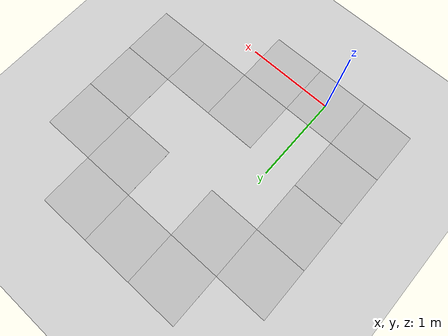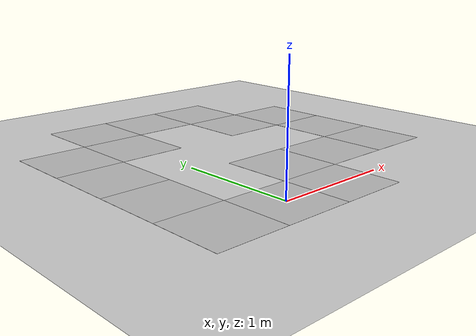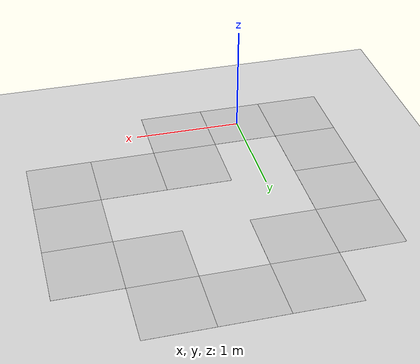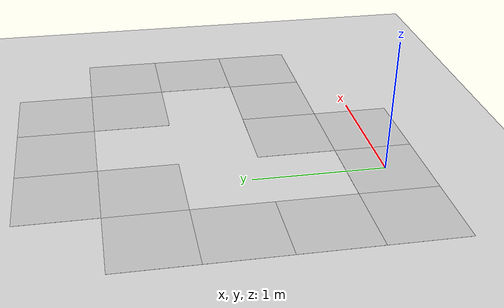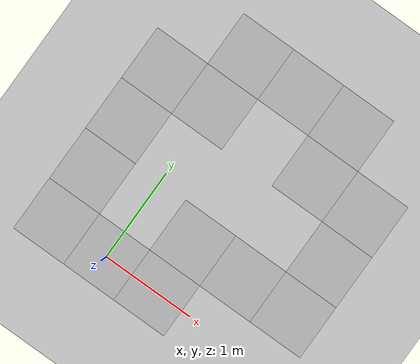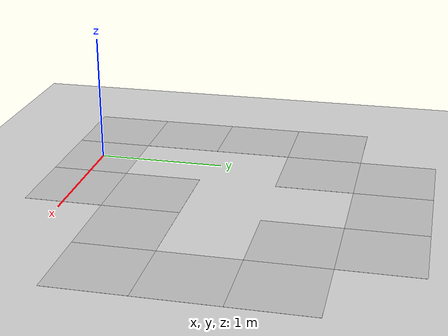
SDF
<?xml version="1.0"?>
<sdf version="1.6">
    <world name="default">
        <light name="sun" type="directional">
            <cast_shadows>1</cast_shadows>
            <diffuse>0.8 0.8 0.8 1</diffuse>
            <specular>0.1 0.1 0.1 1</specular>
            <attenuation>
                <range>1000</range>
                <constant>0.9</constant>
                <linear>0.01</linear>
                <quadratic>0.001</quadratic>
            </attenuation>
            <direction>-0.5 0.5 -1</direction>
        </light>

        <gravity>0 0 -9.8</gravity>

        <scene>
            <ambient>1 1 1 1</ambient>
            <background>0.2 0.0 0.2 1</background>
            <shadows>1</shadows>
            <grid>0</grid>
        </scene>

        <include>
            <uri>model://empty_ground_plane</uri>
            <pose>0 0 -0.001 0 0 0</pose>
        </include>

        <!-- create the map -->
        <include>
            <uri>model://straight_tile</uri>
        </include>

        <include>
            <uri>model://curved_tile</uri>
            <pose>0.6 0 0 0 0 0</pose>
        </include>

        <include>
            <uri>model://curved_tile</uri>
            <pose>0.6 0.6 0 0 0 3.1416</pose>
        </include>

        <include>
            <uri>model://straight_tile</uri>
            <pose>1.2 0.6 0 0 0 0</pose>
        </include>

        <include>
            <uri>model://curved_tile</uri>
            <pose>1.8 0.6 0 0 0 0</pose>
        </include>

        <include>
            <uri>model://straight_tile</uri>
            <pose>1.8 1.2 0 0 0 1.571</pose>
        </include>

        <include>
            <uri>model://curved_tile</uri>
            <pose>1.8 1.8 0 0 0 1.571</pose>
        </include>

        <include>
            <uri>model://curved_tile</uri>
            <pose>1.2 1.8 0 0 0 -1.571</pose>
        </include>

        <include>
            <uri>model://curved_tile</uri>
            <pose>1.2 2.4 0 0 0 1.571</pose>
        </include>

        <include>
            <uri>model://straight_tile</uri>
            <pose>0.6 2.4 0 0 0 0</pose>
        </include>

        <include>
            <uri>model://curved_tile</uri>
            <pose>0 2.4 0 0 0 3.1416</pose>
        </include>

        <include>
            <uri>model://curved_tile</uri>
            <pose>0 1.8 0 0 0 0</pose>
        </include>

        <include>
            <uri>model://curved_tile</uri>
            <pose>-0.6 1.8 0 0 0 3.1416</pose>
        </include>

        <include>
            <uri>model://straight_tile</uri>
            <pose>-0.6 1.2 0 0 0 1.571</pose>
        </include>

        <include>
            <uri>model://straight_tile</uri>
            <pose>-0.6 0.6 0 0 0 1.571</pose>
        </include>

        <include>
            <uri>model://curved_tile</uri>
            <pose>-0.6 0 0 0 0 -1.571</pose>
        </include>

    </world>
</sdf>

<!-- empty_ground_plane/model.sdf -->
<sdf version="1.6">
    <model name="empty_ground_plane">
        <static>true</static>
        <link name="link">
            <collision name="collision">
                <geometry>
                    <plane>
                        <normal>0 0 1</normal>
                        <size>100 100</size>
                    </plane>
                </geometry>
                <surface>
                    <friction>
                        <ode>
                            <mu>100</mu>
                            <mu2>50</mu2>
                        </ode>
                    </friction>
                </surface>
            </collision>

            <visual name="visual">
                <cast_shadows>false</cast_shadows>
                <geometry>
                    <plane>
                        <normal>0 0 1</normal>
                        <size>100 100</size>
                    </plane>
                </geometry>
                <material>
                    <script>
                        <uri>model://empty_ground_plane/materials/scripts/</uri>
                        <uri>model://empty_ground_plane/materials/textures</uri>
                        <name>EmptyGroundPlane/Image</name>
                    </script>
                </material>
            </visual>
        </link>
    </model>
</sdf>

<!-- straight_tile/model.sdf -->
<sdf version="1.6">
    <model name="straight_tile">
        <static>true</static>
        <link name="link">
            <collision name="collision">
                <geometry>
                    <plane>
                        <normal>0 0 1</normal>
                        <size>0.600 0.600</size>
                    </plane>
                </geometry>
                <surface>
                    <friction>
                        <ode>
                            <mu>100</mu>
                            <mu2>50</mu2>
                        </ode>
                    </friction>
                </surface>
            </collision>

            <visual name="visual">
                <cast_shadows>false</cast_shadows>
                <geometry>
                    <plane>
                        <normal>0 0 1</normal>
                        <size>0.60001 0.60001</size>
                    </plane>
                </geometry>
                <material>
                    <script>
                        <uri>model://straight_tile/materials/scripts/</uri>
                        <uri>model://straight_tile/materials/textures</uri>
                        <name>StraightTile/Image</name>
                    </script>
                </material>
            </visual>
        </link>
    </model>
</sdf>

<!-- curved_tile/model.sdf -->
<sdf version="1.6">
    <model name="curved_tile">
        <static>true</static>
        <link name="link">
            <collision name="collision">
                <geometry>
                    <plane>
                        <normal>0 0 1</normal>
                        <size>0.600 0.600</size>
                    </plane>
                </geometry>
                <surface>
                    <friction>
                        <ode>
                            <mu>100</mu>
                            <mu2>50</mu2>
                        </ode>
                    </friction>
                </surface>
            </collision>

            <visual name="visual">
                <cast_shadows>false</cast_shadows>
                <geometry>
                    <plane>
                        <normal>0 0 1</normal>
                        <size>0.60001 0.60001</size>
                    </plane>
                </geometry>
                <material>
                    <script>
                        <uri>model://curved_tile/materials/scripts/</uri>
                        <uri>model://curved_tile/materials/textures</uri>
                        <name>CurvedTile/Image</name>
                    </script>
                </material>
            </visual>
        </link>
    </model>
</sdf>
